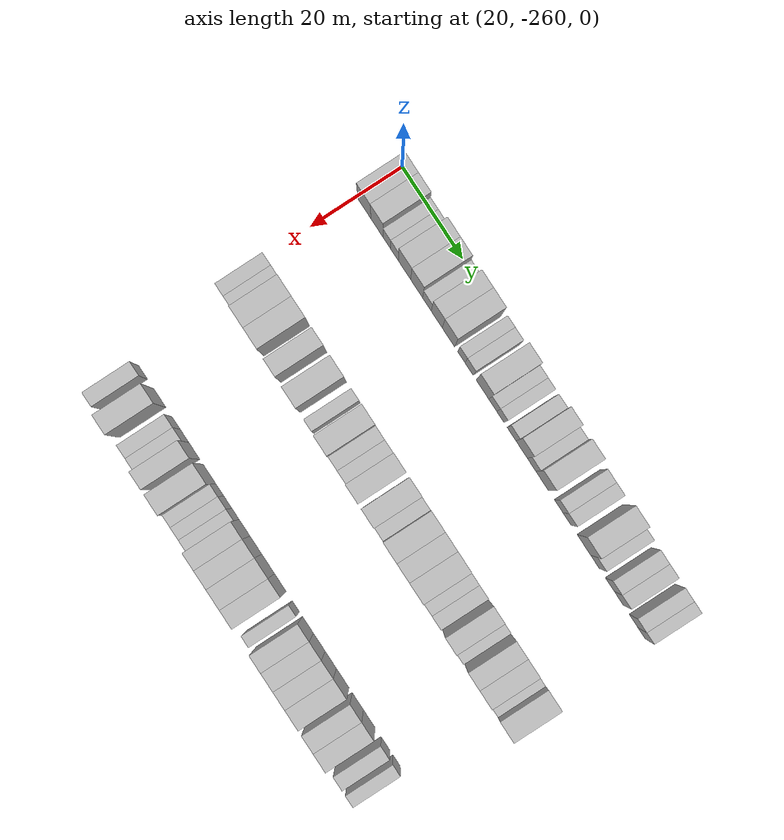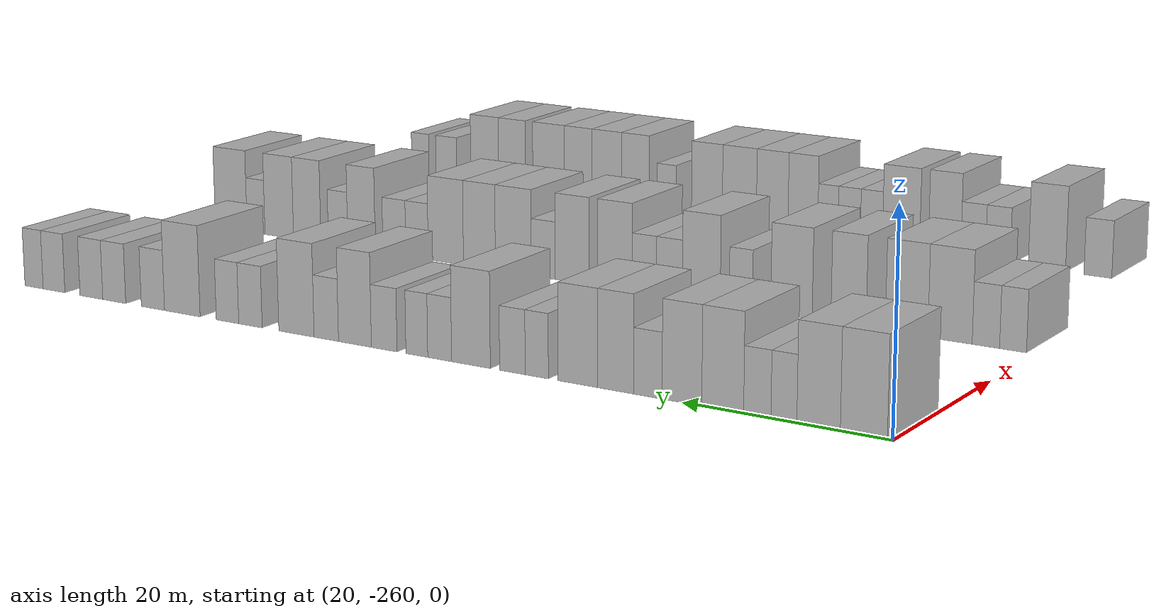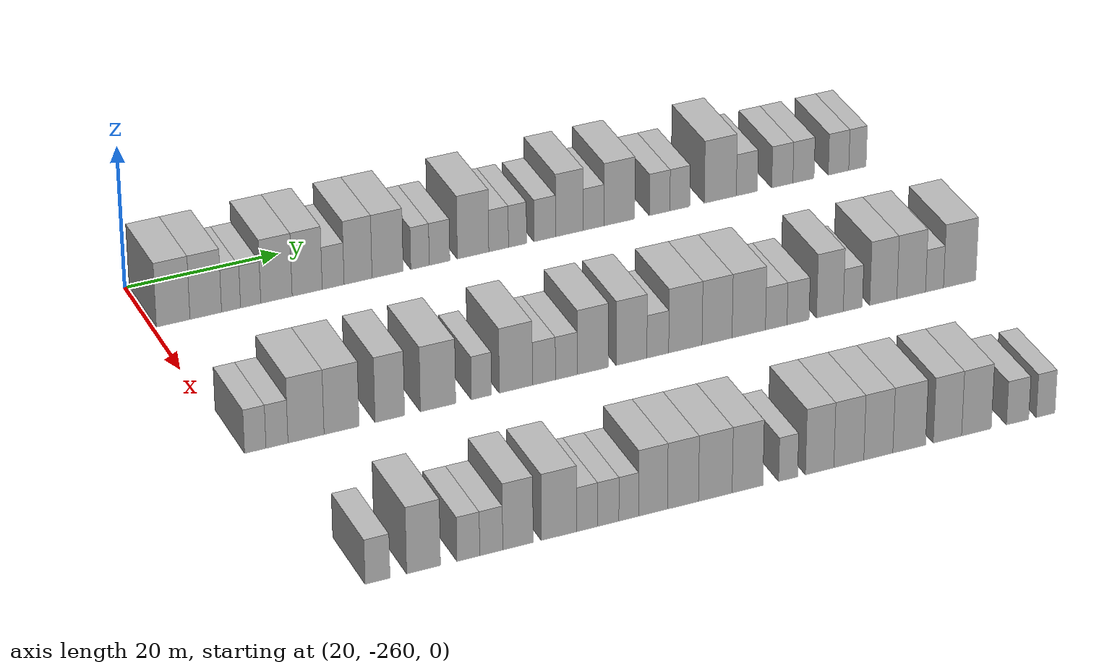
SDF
<sdf version="1.6">
 <world name="default">
  <model name="building_47">
   <static>1</static>
   <pose>25.0000 -257.3190 0 0.000000 0.000000 0.000000</pose>
   <link name="link">
    <pose>0 0 4.50 0 0 0</pose>
    <collision name="collision"><geometry><box><size>10.0000 4.3121 9.0000</size></box></geometry></collision>
    <visual name="visual">
     <cast_shadows>0</cast_shadows>
     <geometry><box><size>10.0000 4.3121 9.0000</size></box></geometry>
     <material>
      <script>
       <uri>model://HANNAS_wall/materials/scripts</uri>
       <uri>model://HANNAS_wall/materials/textures</uri>
       <name>vrc/HANNAS_wall</name>
      </script>
     </material>
    </visual>
   </link>
  </model>
  <model name="building_48">
   <static>1</static>
   <pose>25.0000 -253.1301 0 0.000000 0.000000 0.000000</pose>
   <link name="link">
    <pose>0 0 4.50 0 0 0</pose>
    <collision name="collision"><geometry><box><size>10.0000 4.0658 9.0000</size></box></geometry></collision>
    <visual name="visual">
     <cast_shadows>0</cast_shadows>
     <geometry><box><size>10.0000 4.0658 9.0000</size></box></geometry>
     <material>
      <script>
       <uri>model://HANNAS_wall/materials/scripts</uri>
       <uri>model://HANNAS_wall/materials/textures</uri>
       <name>vrc/HANNAS_wall</name>
      </script>
     </material>
    </visual>
   </link>
  </model>
  <model name="building_49">
   <static>1</static>
   <pose>25.0000 -249.8731 0 0.000000 0.000000 0.000000</pose>
   <link name="link">
    <pose>0 0 3.00 0 0 0</pose>
    <collision name="collision"><geometry><box><size>10.0000 2.4481 6.0000</size></box></geometry></collision>
    <visual name="visual">
     <cast_shadows>0</cast_shadows>
     <geometry><box><size>10.0000 2.4481 6.0000</size></box></geometry>
     <material>
      <script>
       <uri>model://HANNAS_wall/materials/scripts</uri>
       <uri>model://HANNAS_wall/materials/textures</uri>
       <name>vrc/HANNAS_wall</name>
      </script>
     </material>
    </visual>
   </link>
  </model>
  <model name="building_50">
   <static>1</static>
   <pose>25.0000 -247.3394 0 0.000000 0.000000 0.000000</pose>
   <link name="link">
    <pose>0 0 3.00 0 0 0</pose>
    <collision name="collision"><geometry><box><size>10.0000 2.6193 6.0000</size></box></geometry></collision>
    <visual name="visual">
     <cast_shadows>0</cast_shadows>
     <geometry><box><size>10.0000 2.6193 6.0000</size></box></geometry>
     <material>
      <script>
       <uri>model://HANNAS_wall/materials/scripts</uri>
       <uri>model://HANNAS_wall/materials/textures</uri>
       <name>vrc/HANNAS_wall</name>
      </script>
     </material>
    </visual>
   </link>
  </model>
  <model name="building_51">
   <static>1</static>
   <pose>25.0000 -243.9906 0 0.000000 0.000000 0.000000</pose>
   <link name="link">
    <pose>0 0 4.50 0 0 0</pose>
    <collision name="collision"><geometry><box><size>10.0000 4.0783 9.0000</size></box></geometry></collision>
    <visual name="visual">
     <cast_shadows>0</cast_shadows>
     <geometry><box><size>10.0000 4.0783 9.0000</size></box></geometry>
     <material>
      <script>
       <uri>model://HANNAS_wall/materials/scripts</uri>
       <uri>model://HANNAS_wall/materials/textures</uri>
       <name>vrc/HANNAS_wall</name>
      </script>
     </material>
    </visual>
   </link>
  </model>
  <model name="building_52">
   <static>1</static>
   <pose>25.0000 -239.9852 0 0.000000 0.000000 0.000000</pose>
   <link name="link">
    <pose>0 0 4.50 0 0 0</pose>
    <collision name="collision"><geometry><box><size>10.0000 3.9326 9.0000</size></box></geometry></collision>
    <visual name="visual">
     <cast_shadows>0</cast_shadows>
     <geometry><box><size>10.0000 3.9326 9.0000</size></box></geometry>
     <material>
      <script>
       <uri>model://HANNAS_wall/materials/scripts</uri>
       <uri>model://HANNAS_wall/materials/textures</uri>
       <name>vrc/HANNAS_wall</name>
      </script>
     </material>
    </visual>
   </link>
  </model>
  <model name="building_53">
   <static>1</static>
   <pose>25.0000 -236.5859 0 0.000000 0.000000 0.000000</pose>
   <link name="link">
    <pose>0 0 3.00 0 0 0</pose>
    <collision name="collision"><geometry><box><size>10.0000 2.8661 6.0000</size></box></geometry></collision>
    <visual name="visual">
     <cast_shadows>0</cast_shadows>
     <geometry><box><size>10.0000 2.8661 6.0000</size></box></geometry>
     <material>
      <script>
       <uri>model://HANNAS_wall/materials/scripts</uri>
       <uri>model://HANNAS_wall/materials/textures</uri>
       <name>vrc/HANNAS_wall</name>
      </script>
     </material>
    </visual>
   </link>
  </model>
  <model name="building_54">
   <static>1</static>
   <pose>25.0000 -233.3143 0 0.000000 0.000000 0.000000</pose>
   <link name="link">
    <pose>0 0 4.50 0 0 0</pose>
    <collision name="collision"><geometry><box><size>10.0000 3.6769 9.0000</size></box></geometry></collision>
    <visual name="visual">
     <cast_shadows>0</cast_shadows>
     <geometry><box><size>10.0000 3.6769 9.0000</size></box></geometry>
     <material>
      <script>
       <uri>model://HANNAS_wall/materials/scripts</uri>
       <uri>model://HANNAS_wall/materials/textures</uri>
       <name>vrc/HANNAS_wall</name>
      </script>
     </material>
    </visual>
   </link>
  </model>
  <model name="building_55">
   <static>1</static>
   <pose>25.0000 -229.4184 0 0.000000 0.000000 0.000000</pose>
   <link name="link">
    <pose>0 0 4.50 0 0 0</pose>
    <collision name="collision"><geometry><box><size>10.0000 4.1149 9.0000</size></box></geometry></collision>
    <visual name="visual">
     <cast_shadows>0</cast_shadows>
     <geometry><box><size>10.0000 4.1149 9.0000</size></box></geometry>
     <material>
      <script>
       <uri>model://HANNAS_wall/materials/scripts</uri>
       <uri>model://HANNAS_wall/materials/textures</uri>
       <name>vrc/HANNAS_wall</name>
      </script>
     </material>
    </visual>
   </link>
  </model>
  <model name="building_56">
   <static>1</static>
   <pose>25.0000 -225.1333 0 0.000000 0.000000 0.000000</pose>
   <link name="link">
    <pose>0 0 3.00 0 0 0</pose>
    <collision name="collision"><geometry><box><size>10.0000 2.4555 6.0000</size></box></geometry></collision>
    <visual name="visual">
     <cast_shadows>0</cast_shadows>
     <geometry><box><size>10.0000 2.4555 6.0000</size></box></geometry>
     <material>
      <script>
       <uri>model://HANNAS_wall/materials/scripts</uri>
       <uri>model://HANNAS_wall/materials/textures</uri>
       <name>vrc/HANNAS_wall</name>
      </script>
     </material>
    </visual>
   </link>
  </model>
  <model name="building_57">
   <static>1</static>
   <pose>25.0000 -222.5394 0 0.000000 0.000000 0.000000</pose>
   <link name="link">
    <pose>0 0 3.00 0 0 0</pose>
    <collision name="collision"><geometry><box><size>10.0000 2.7322 6.0000</size></box></geometry></collision>
    <visual name="visual">
     <cast_shadows>0</cast_shadows>
     <geometry><box><size>10.0000 2.7322 6.0000</size></box></geometry>
     <material>
      <script>
       <uri>model://HANNAS_wall/materials/scripts</uri>
       <uri>model://HANNAS_wall/materials/textures</uri>
       <name>vrc/HANNAS_wall</name>
      </script>
     </material>
    </visual>
   </link>
  </model>
  <model name="building_58">
   <static>1</static>
   <pose>25.0000 -218.0650 0 0.000000 0.000000 0.000000</pose>
   <link name="link">
    <pose>0 0 4.50 0 0 0</pose>
    <collision name="collision"><geometry><box><size>10.0000 4.2166 9.0000</size></box></geometry></collision>
    <visual name="visual">
     <cast_shadows>0</cast_shadows>
     <geometry><box><size>10.0000 4.2166 9.0000</size></box></geometry>
     <material>
      <script>
       <uri>model://HANNAS_wall/materials/scripts</uri>
       <uri>model://HANNAS_wall/materials/textures</uri>
       <name>vrc/HANNAS_wall</name>
      </script>
     </material>
    </visual>
   </link>
  </model>
  <model name="building_59">
   <static>1</static>
   <pose>25.0000 -214.6383 0 0.000000 0.000000 0.000000</pose>
   <link name="link">
    <pose>0 0 3.00 0 0 0</pose>
    <collision name="collision"><geometry><box><size>10.0000 2.6369 6.0000</size></box></geometry></collision>
    <visual name="visual">
     <cast_shadows>0</cast_shadows>
     <geometry><box><size>10.0000 2.6369 6.0000</size></box></geometry>
     <material>
      <script>
       <uri>model://HANNAS_wall/materials/scripts</uri>
       <uri>model://HANNAS_wall/materials/textures</uri>
       <name>vrc/HANNAS_wall</name>
      </script>
     </material>
    </visual>
   </link>
  </model>
  <model name="building_60">
   <static>1</static>
   <pose>25.0000 -212.1002 0 0.000000 0.000000 0.000000</pose>
   <link name="link">
    <pose>0 0 3.00 0 0 0</pose>
    <collision name="collision"><geometry><box><size>10.0000 2.4391 6.0000</size></box></geometry></collision>
    <visual name="visual">
     <cast_shadows>0</cast_shadows>
     <geometry><box><size>10.0000 2.4391 6.0000</size></box></geometry>
     <material>
      <script>
       <uri>model://HANNAS_wall/materials/scripts</uri>
       <uri>model://HANNAS_wall/materials/textures</uri>
       <name>vrc/HANNAS_wall</name>
      </script>
     </material>
    </visual>
   </link>
  </model>
  <model name="building_61">
   <static>1</static>
   <pose>25.0000 -208.4252 0 0.000000 0.000000 0.000000</pose>
   <link name="link">
    <pose>0 0 3.00 0 0 0</pose>
    <collision name="collision"><geometry><box><size>10.0000 2.9109 6.0000</size></box></geometry></collision>
    <visual name="visual">
     <cast_shadows>0</cast_shadows>
     <geometry><box><size>10.0000 2.9109 6.0000</size></box></geometry>
     <material>
      <script>
       <uri>model://HANNAS_wall/materials/scripts</uri>
       <uri>model://HANNAS_wall/materials/textures</uri>
       <name>vrc/HANNAS_wall</name>
      </script>
     </material>
    </visual>
   </link>
  </model>
  <model name="building_62">
   <static>1</static>
   <pose>25.0000 -205.0782 0 0.000000 0.000000 0.000000</pose>
   <link name="link">
    <pose>0 0 4.50 0 0 0</pose>
    <collision name="collision"><geometry><box><size>10.0000 3.7832 9.0000</size></box></geometry></collision>
    <visual name="visual">
     <cast_shadows>0</cast_shadows>
     <geometry><box><size>10.0000 3.7832 9.0000</size></box></geometry>
     <material>
      <script>
       <uri>model://HANNAS_wall/materials/scripts</uri>
       <uri>model://HANNAS_wall/materials/textures</uri>
       <name>vrc/HANNAS_wall</name>
      </script>
     </material>
    </visual>
   </link>
  </model>
  <model name="building_63">
   <static>1</static>
   <pose>25.0000 -201.7637 0 0.000000 0.000000 0.000000</pose>
   <link name="link">
    <pose>0 0 3.00 0 0 0</pose>
    <collision name="collision"><geometry><box><size>10.0000 2.8456 6.0000</size></box></geometry></collision>
    <visual name="visual">
     <cast_shadows>0</cast_shadows>
     <geometry><box><size>10.0000 2.8456 6.0000</size></box></geometry>
     <material>
      <script>
       <uri>model://HANNAS_wall/materials/scripts</uri>
       <uri>model://HANNAS_wall/materials/textures</uri>
       <name>vrc/HANNAS_wall</name>
      </script>
     </material>
    </visual>
   </link>
  </model>
  <model name="building_64">
   <static>1</static>
   <pose>25.0000 -198.2565 0 0.000000 0.000000 0.000000</pose>
   <link name="link">
    <pose>0 0 4.50 0 0 0</pose>
    <collision name="collision"><geometry><box><size>10.0000 4.1689 9.0000</size></box></geometry></collision>
    <visual name="visual">
     <cast_shadows>0</cast_shadows>
     <geometry><box><size>10.0000 4.1689 9.0000</size></box></geometry>
     <material>
      <script>
       <uri>model://HANNAS_wall/materials/scripts</uri>
       <uri>model://HANNAS_wall/materials/textures</uri>
       <name>vrc/HANNAS_wall</name>
      </script>
     </material>
    </visual>
   </link>
  </model>
  <model name="building_65">
   <static>1</static>
   <pose>25.0000 -192.7559 0 0.000000 0.000000 0.000000</pose>
   <link name="link">
    <pose>0 0 3.00 0 0 0</pose>
    <collision name="collision"><geometry><box><size>10.0000 2.8322 6.0000</size></box></geometry></collision>
    <visual name="visual">
     <cast_shadows>0</cast_shadows>
     <geometry><box><size>10.0000 2.8322 6.0000</size></box></geometry>
     <material>
      <script>
       <uri>model://HANNAS_wall/materials/scripts</uri>
       <uri>model://HANNAS_wall/materials/textures</uri>
       <name>vrc/HANNAS_wall</name>
      </script>
     </material>
    </visual>
   </link>
  </model>
  <model name="building_66">
   <static>1</static>
   <pose>25.0000 -189.9664 0 0.000000 0.000000 0.000000</pose>
   <link name="link">
    <pose>0 0 3.00 0 0 0</pose>
    <collision name="collision"><geometry><box><size>10.0000 2.7468 6.0000</size></box></geometry></collision>
    <visual name="visual">
     <cast_shadows>0</cast_shadows>
     <geometry><box><size>10.0000 2.7468 6.0000</size></box></geometry>
     <material>
      <script>
       <uri>model://HANNAS_wall/materials/scripts</uri>
       <uri>model://HANNAS_wall/materials/textures</uri>
       <name>vrc/HANNAS_wall</name>
      </script>
     </material>
    </visual>
   </link>
  </model>
  <model name="building_67">
   <static>1</static>
   <pose>25.0000 -184.3687 0 0.000000 0.000000 0.000000</pose>
   <link name="link">
    <pose>0 0 4.50 0 0 0</pose>
    <collision name="collision"><geometry><box><size>10.0000 4.4485 9.0000</size></box></geometry></collision>
    <visual name="visual">
     <cast_shadows>0</cast_shadows>
     <geometry><box><size>10.0000 4.4485 9.0000</size></box></geometry>
     <material>
      <script>
       <uri>model://HANNAS_wall/materials/scripts</uri>
       <uri>model://HANNAS_wall/materials/textures</uri>
       <name>vrc/HANNAS_wall</name>
      </script>
     </material>
    </visual>
   </link>
  </model>
  <model name="building_68">
   <static>1</static>
   <pose>25.0000 -180.6715 0 0.000000 0.000000 0.000000</pose>
   <link name="link">
    <pose>0 0 3.00 0 0 0</pose>
    <collision name="collision"><geometry><box><size>10.0000 2.9459 6.0000</size></box></geometry></collision>
    <visual name="visual">
     <cast_shadows>0</cast_shadows>
     <geometry><box><size>10.0000 2.9459 6.0000</size></box></geometry>
     <material>
      <script>
       <uri>model://HANNAS_wall/materials/scripts</uri>
       <uri>model://HANNAS_wall/materials/textures</uri>
       <name>vrc/HANNAS_wall</name>
      </script>
     </material>
    </visual>
   </link>
  </model>
  <model name="building_69">
   <static>1</static>
   <pose>25.0000 -175.7172 0 0.000000 0.000000 0.000000</pose>
   <link name="link">
    <pose>0 0 3.00 0 0 0</pose>
    <collision name="collision"><geometry><box><size>10.0000 2.9628 6.0000</size></box></geometry></collision>
    <visual name="visual">
     <cast_shadows>0</cast_shadows>
     <geometry><box><size>10.0000 2.9628 6.0000</size></box></geometry>
     <material>
      <script>
       <uri>model://HANNAS_wall/materials/scripts</uri>
       <uri>model://HANNAS_wall/materials/textures</uri>
       <name>vrc/HANNAS_wall</name>
      </script>
     </material>
    </visual>
   </link>
  </model>
  <model name="building_70">
   <static>1</static>
   <pose>25.0000 -172.7453 0 0.000000 0.000000 0.000000</pose>
   <link name="link">
    <pose>0 0 3.00 0 0 0</pose>
    <collision name="collision"><geometry><box><size>10.0000 2.9809 6.0000</size></box></geometry></collision>
    <visual name="visual">
     <cast_shadows>0</cast_shadows>
     <geometry><box><size>10.0000 2.9809 6.0000</size></box></geometry>
     <material>
      <script>
       <uri>model://HANNAS_wall/materials/scripts</uri>
       <uri>model://HANNAS_wall/materials/textures</uri>
       <name>vrc/HANNAS_wall</name>
      </script>
     </material>
    </visual>
   </link>
  </model>
  <model name="building_71">
   <static>1</static>
   <pose>25.0000 -167.8070 0 0.000000 0.000000 0.000000</pose>
   <link name="link">
    <pose>0 0 3.00 0 0 0</pose>
    <collision name="collision"><geometry><box><size>10.0000 2.8958 6.0000</size></box></geometry></collision>
    <visual name="visual">
     <cast_shadows>0</cast_shadows>
     <geometry><box><size>10.0000 2.8958 6.0000</size></box></geometry>
     <material>
      <script>
       <uri>model://HANNAS_wall/materials/scripts</uri>
       <uri>model://HANNAS_wall/materials/textures</uri>
       <name>vrc/HANNAS_wall</name>
      </script>
     </material>
    </visual>
   </link>
  </model>
  <model name="building_72">
   <static>1</static>
   <pose>25.0000 -165.1339 0 0.000000 0.000000 0.000000</pose>
   <link name="link">
    <pose>0 0 3.00 0 0 0</pose>
    <collision name="collision"><geometry><box><size>10.0000 2.4503 6.0000</size></box></geometry></collision>
    <visual name="visual">
     <cast_shadows>0</cast_shadows>
     <geometry><box><size>10.0000 2.4503 6.0000</size></box></geometry>
     <material>
      <script>
       <uri>model://HANNAS_wall/materials/scripts</uri>
       <uri>model://HANNAS_wall/materials/textures</uri>
       <name>vrc/HANNAS_wall</name>
      </script>
     </material>
    </visual>
   </link>
  </model>
  <model name="building_273">
   <static>1</static>
   <pose>55.0000 -257.8651 0 0.000000 0.000000 0.000000</pose>
   <link name="link">
    <pose>0 0 3.00 0 0 0</pose>
    <collision name="collision"><geometry><box><size>10.0000 2.6590 6.0000</size></box></geometry></collision>
    <visual name="visual">
     <cast_shadows>0</cast_shadows>
     <geometry><box><size>10.0000 2.6590 6.0000</size></box></geometry>
     <material>
      <script>
       <uri>model://HANNAS_wall/materials/scripts</uri>
       <uri>model://HANNAS_wall/materials/textures</uri>
       <name>vrc/HANNAS_wall</name>
      </script>
     </material>
    </visual>
   </link>
  </model>
  <model name="building_274">
   <static>1</static>
   <pose>55.0000 -255.1690 0 0.000000 0.000000 0.000000</pose>
   <link name="link">
    <pose>0 0 3.00 0 0 0</pose>
    <collision name="collision"><geometry><box><size>10.0000 2.7331 6.0000</size></box></geometry></collision>
    <visual name="visual">
     <cast_shadows>0</cast_shadows>
     <geometry><box><size>10.0000 2.7331 6.0000</size></box></geometry>
     <material>
      <script>
       <uri>model://HANNAS_wall/materials/scripts</uri>
       <uri>model://HANNAS_wall/materials/textures</uri>
       <name>vrc/HANNAS_wall</name>
      </script>
     </material>
    </visual>
   </link>
  </model>
  <model name="building_275">
   <static>1</static>
   <pose>55.0000 -251.5542 0 0.000000 0.000000 0.000000</pose>
   <link name="link">
    <pose>0 0 4.50 0 0 0</pose>
    <collision name="collision"><geometry><box><size>10.0000 4.4966 9.0000</size></box></geometry></collision>
    <visual name="visual">
     <cast_shadows>0</cast_shadows>
     <geometry><box><size>10.0000 4.4966 9.0000</size></box></geometry>
     <material>
      <script>
       <uri>model://HANNAS_wall/materials/scripts</uri>
       <uri>model://HANNAS_wall/materials/textures</uri>
       <name>vrc/HANNAS_wall</name>
      </script>
     </material>
    </visual>
   </link>
  </model>
  <model name="building_276">
   <static>1</static>
   <pose>55.0000 -247.1091 0 0.000000 0.000000 0.000000</pose>
   <link name="link">
    <pose>0 0 4.50 0 0 0</pose>
    <collision name="collision"><geometry><box><size>10.0000 4.3936 9.0000</size></box></geometry></collision>
    <visual name="visual">
     <cast_shadows>0</cast_shadows>
     <geometry><box><size>10.0000 4.3936 9.0000</size></box></geometry>
     <material>
      <script>
       <uri>model://HANNAS_wall/materials/scripts</uri>
       <uri>model://HANNAS_wall/materials/textures</uri>
       <name>vrc/HANNAS_wall</name>
      </script>
     </material>
    </visual>
   </link>
  </model>
  <model name="building_277">
   <static>1</static>
   <pose>55.0000 -241.0486 0 0.000000 0.000000 0.000000</pose>
   <link name="link">
    <pose>0 0 4.50 0 0 0</pose>
    <collision name="collision"><geometry><box><size>10.0000 3.7274 9.0000</size></box></geometry></collision>
    <visual name="visual">
     <cast_shadows>0</cast_shadows>
     <geometry><box><size>10.0000 3.7274 9.0000</size></box></geometry>
     <material>
      <script>
       <uri>model://HANNAS_wall/materials/scripts</uri>
       <uri>model://HANNAS_wall/materials/textures</uri>
       <name>vrc/HANNAS_wall</name>
      </script>
     </material>
    </visual>
   </link>
  </model>
  <model name="building_278">
   <static>1</static>
   <pose>55.0000 -234.9404 0 0.000000 0.000000 0.000000</pose>
   <link name="link">
    <pose>0 0 4.50 0 0 0</pose>
    <collision name="collision"><geometry><box><size>10.0000 4.4891 9.0000</size></box></geometry></collision>
    <visual name="visual">
     <cast_shadows>0</cast_shadows>
     <geometry><box><size>10.0000 4.4891 9.0000</size></box></geometry>
     <material>
      <script>
       <uri>model://HANNAS_wall/materials/scripts</uri>
       <uri>model://HANNAS_wall/materials/textures</uri>
       <name>vrc/HANNAS_wall</name>
      </script>
     </material>
    </visual>
   </link>
  </model>
  <model name="building_279">
   <static>1</static>
   <pose>55.0000 -229.4079 0 0.000000 0.000000 0.000000</pose>
   <link name="link">
    <pose>0 0 3.00 0 0 0</pose>
    <collision name="collision"><geometry><box><size>10.0000 2.5760 6.0000</size></box></geometry></collision>
    <visual name="visual">
     <cast_shadows>0</cast_shadows>
     <geometry><box><size>10.0000 2.5760 6.0000</size></box></geometry>
     <material>
      <script>
       <uri>model://HANNAS_wall/materials/scripts</uri>
       <uri>model://HANNAS_wall/materials/textures</uri>
       <name>vrc/HANNAS_wall</name>
      </script>
     </material>
    </visual>
   </link>
  </model>
  <model name="building_280">
   <static>1</static>
   <pose>55.0000 -224.9890 0 0.000000 0.000000 0.000000</pose>
   <link name="link">
    <pose>0 0 4.50 0 0 0</pose>
    <collision name="collision"><geometry><box><size>10.0000 4.2618 9.0000</size></box></geometry></collision>
    <visual name="visual">
     <cast_shadows>0</cast_shadows>
     <geometry><box><size>10.0000 4.2618 9.0000</size></box></geometry>
     <material>
      <script>
       <uri>model://HANNAS_wall/materials/scripts</uri>
       <uri>model://HANNAS_wall/materials/textures</uri>
       <name>vrc/HANNAS_wall</name>
      </script>
     </material>
    </visual>
   </link>
  </model>
  <model name="building_281">
   <static>1</static>
   <pose>55.0000 -221.3744 0 0.000000 0.000000 0.000000</pose>
   <link name="link">
    <pose>0 0 3.00 0 0 0</pose>
    <collision name="collision"><geometry><box><size>10.0000 2.9674 6.0000</size></box></geometry></collision>
    <visual name="visual">
     <cast_shadows>0</cast_shadows>
     <geometry><box><size>10.0000 2.9674 6.0000</size></box></geometry>
     <material>
      <script>
       <uri>model://HANNAS_wall/materials/scripts</uri>
       <uri>model://HANNAS_wall/materials/textures</uri>
       <name>vrc/HANNAS_wall</name>
      </script>
     </material>
    </visual>
   </link>
  </model>
  <model name="building_282">
   <static>1</static>
   <pose>55.0000 -218.4745 0 0.000000 0.000000 0.000000</pose>
   <link name="link">
    <pose>0 0 3.00 0 0 0</pose>
    <collision name="collision"><geometry><box><size>10.0000 2.8324 6.0000</size></box></geometry></collision>
    <visual name="visual">
     <cast_shadows>0</cast_shadows>
     <geometry><box><size>10.0000 2.8324 6.0000</size></box></geometry>
     <material>
      <script>
       <uri>model://HANNAS_wall/materials/scripts</uri>
       <uri>model://HANNAS_wall/materials/textures</uri>
       <name>vrc/HANNAS_wall</name>
      </script>
     </material>
    </visual>
   </link>
  </model>
  <model name="building_283">
   <static>1</static>
   <pose>55.0000 -215.0304 0 0.000000 0.000000 0.000000</pose>
   <link name="link">
    <pose>0 0 4.50 0 0 0</pose>
    <collision name="collision"><geometry><box><size>10.0000 4.0558 9.0000</size></box></geometry></collision>
    <visual name="visual">
     <cast_shadows>0</cast_shadows>
     <geometry><box><size>10.0000 4.0558 9.0000</size></box></geometry>
     <material>
      <script>
       <uri>model://HANNAS_wall/materials/scripts</uri>
       <uri>model://HANNAS_wall/materials/textures</uri>
       <name>vrc/HANNAS_wall</name>
      </script>
     </material>
    </visual>
   </link>
  </model>
  <model name="building_284">
   <static>1</static>
   <pose>55.0000 -209.9890 0 0.000000 0.000000 0.000000</pose>
   <link name="link">
    <pose>0 0 4.50 0 0 0</pose>
    <collision name="collision"><geometry><box><size>10.0000 4.0269 9.0000</size></box></geometry></collision>
    <visual name="visual">
     <cast_shadows>0</cast_shadows>
     <geometry><box><size>10.0000 4.0269 9.0000</size></box></geometry>
     <material>
      <script>
       <uri>model://HANNAS_wall/materials/scripts</uri>
       <uri>model://HANNAS_wall/materials/textures</uri>
       <name>vrc/HANNAS_wall</name>
      </script>
     </material>
    </visual>
   </link>
  </model>
  <model name="building_285">
   <static>1</static>
   <pose>55.0000 -206.5444 0 0.000000 0.000000 0.000000</pose>
   <link name="link">
    <pose>0 0 3.00 0 0 0</pose>
    <collision name="collision"><geometry><box><size>10.0000 2.8623 6.0000</size></box></geometry></collision>
    <visual name="visual">
     <cast_shadows>0</cast_shadows>
     <geometry><box><size>10.0000 2.8623 6.0000</size></box></geometry>
     <material>
      <script>
       <uri>model://HANNAS_wall/materials/scripts</uri>
       <uri>model://HANNAS_wall/materials/textures</uri>
       <name>vrc/HANNAS_wall</name>
      </script>
     </material>
    </visual>
   </link>
  </model>
  <model name="building_286">
   <static>1</static>
   <pose>55.0000 -202.9122 0 0.000000 0.000000 0.000000</pose>
   <link name="link">
    <pose>0 0 4.50 0 0 0</pose>
    <collision name="collision"><geometry><box><size>10.0000 4.4020 9.0000</size></box></geometry></collision>
    <visual name="visual">
     <cast_shadows>0</cast_shadows>
     <geometry><box><size>10.0000 4.4020 9.0000</size></box></geometry>
     <material>
      <script>
       <uri>model://HANNAS_wall/materials/scripts</uri>
       <uri>model://HANNAS_wall/materials/textures</uri>
       <name>vrc/HANNAS_wall</name>
      </script>
     </material>
    </visual>
   </link>
  </model>
  <model name="building_287">
   <static>1</static>
   <pose>55.0000 -198.7236 0 0.000000 0.000000 0.000000</pose>
   <link name="link">
    <pose>0 0 4.50 0 0 0</pose>
    <collision name="collision"><geometry><box><size>10.0000 3.9752 9.0000</size></box></geometry></collision>
    <visual name="visual">
     <cast_shadows>0</cast_shadows>
     <geometry><box><size>10.0000 3.9752 9.0000</size></box></geometry>
     <material>
      <script>
       <uri>model://HANNAS_wall/materials/scripts</uri>
       <uri>model://HANNAS_wall/materials/textures</uri>
       <name>vrc/HANNAS_wall</name>
      </script>
     </material>
    </visual>
   </link>
  </model>
  <model name="building_288">
   <static>1</static>
   <pose>55.0000 -194.5119 0 0.000000 0.000000 0.000000</pose>
   <link name="link">
    <pose>0 0 4.50 0 0 0</pose>
    <collision name="collision"><geometry><box><size>10.0000 4.4482 9.0000</size></box></geometry></collision>
    <visual name="visual">
     <cast_shadows>0</cast_shadows>
     <geometry><box><size>10.0000 4.4482 9.0000</size></box></geometry>
     <material>
      <script>
       <uri>model://HANNAS_wall/materials/scripts</uri>
       <uri>model://HANNAS_wall/materials/textures</uri>
       <name>vrc/HANNAS_wall</name>
      </script>
     </material>
    </visual>
   </link>
  </model>
  <model name="building_289">
   <static>1</static>
   <pose>55.0000 -190.8469 0 0.000000 0.000000 0.000000</pose>
   <link name="link">
    <pose>0 0 3.00 0 0 0</pose>
    <collision name="collision"><geometry><box><size>10.0000 2.8818 6.0000</size></box></geometry></collision>
    <visual name="visual">
     <cast_shadows>0</cast_shadows>
     <geometry><box><size>10.0000 2.8818 6.0000</size></box></geometry>
     <material>
      <script>
       <uri>model://HANNAS_wall/materials/scripts</uri>
       <uri>model://HANNAS_wall/materials/textures</uri>
       <name>vrc/HANNAS_wall</name>
      </script>
     </material>
    </visual>
   </link>
  </model>
  <model name="building_290">
   <static>1</static>
   <pose>55.0000 -187.9256 0 0.000000 0.000000 0.000000</pose>
   <link name="link">
    <pose>0 0 3.00 0 0 0</pose>
    <collision name="collision"><geometry><box><size>10.0000 2.9609 6.0000</size></box></geometry></collision>
    <visual name="visual">
     <cast_shadows>0</cast_shadows>
     <geometry><box><size>10.0000 2.9609 6.0000</size></box></geometry>
     <material>
      <script>
       <uri>model://HANNAS_wall/materials/scripts</uri>
       <uri>model://HANNAS_wall/materials/textures</uri>
       <name>vrc/HANNAS_wall</name>
      </script>
     </material>
    </visual>
   </link>
  </model>
  <model name="building_291">
   <static>1</static>
   <pose>55.0000 -183.6408 0 0.000000 0.000000 0.000000</pose>
   <link name="link">
    <pose>0 0 4.50 0 0 0</pose>
    <collision name="collision"><geometry><box><size>10.0000 3.6087 9.0000</size></box></geometry></collision>
    <visual name="visual">
     <cast_shadows>0</cast_shadows>
     <geometry><box><size>10.0000 3.6087 9.0000</size></box></geometry>
     <material>
      <script>
       <uri>model://HANNAS_wall/materials/scripts</uri>
       <uri>model://HANNAS_wall/materials/textures</uri>
       <name>vrc/HANNAS_wall</name>
      </script>
     </material>
    </visual>
   </link>
  </model>
  <model name="building_292">
   <static>1</static>
   <pose>55.0000 -180.5463 0 0.000000 0.000000 0.000000</pose>
   <link name="link">
    <pose>0 0 3.00 0 0 0</pose>
    <collision name="collision"><geometry><box><size>10.0000 2.5803 6.0000</size></box></geometry></collision>
    <visual name="visual">
     <cast_shadows>0</cast_shadows>
     <geometry><box><size>10.0000 2.5803 6.0000</size></box></geometry>
     <material>
      <script>
       <uri>model://HANNAS_wall/materials/scripts</uri>
       <uri>model://HANNAS_wall/materials/textures</uri>
       <name>vrc/HANNAS_wall</name>
      </script>
     </material>
    </visual>
   </link>
  </model>
  <model name="building_293">
   <static>1</static>
   <pose>55.0000 -176.4105 0 0.000000 0.000000 0.000000</pose>
   <link name="link">
    <pose>0 0 4.50 0 0 0</pose>
    <collision name="collision"><geometry><box><size>10.0000 3.6912 9.0000</size></box></geometry></collision>
    <visual name="visual">
     <cast_shadows>0</cast_shadows>
     <geometry><box><size>10.0000 3.6912 9.0000</size></box></geometry>
     <material>
      <script>
       <uri>model://HANNAS_wall/materials/scripts</uri>
       <uri>model://HANNAS_wall/materials/textures</uri>
       <name>vrc/HANNAS_wall</name>
      </script>
     </material>
    </visual>
   </link>
  </model>
  <model name="building_294">
   <static>1</static>
   <pose>55.0000 -172.6098 0 0.000000 0.000000 0.000000</pose>
   <link name="link">
    <pose>0 0 4.50 0 0 0</pose>
    <collision name="collision"><geometry><box><size>10.0000 3.9103 9.0000</size></box></geometry></collision>
    <visual name="visual">
     <cast_shadows>0</cast_shadows>
     <geometry><box><size>10.0000 3.9103 9.0000</size></box></geometry>
     <material>
      <script>
       <uri>model://HANNAS_wall/materials/scripts</uri>
       <uri>model://HANNAS_wall/materials/textures</uri>
       <name>vrc/HANNAS_wall</name>
      </script>
     </material>
    </visual>
   </link>
  </model>
  <model name="building_295">
   <static>1</static>
   <pose>55.0000 -169.4228 0 0.000000 0.000000 0.000000</pose>
   <link name="link">
    <pose>0 0 3.00 0 0 0</pose>
    <collision name="collision"><geometry><box><size>10.0000 2.4638 6.0000</size></box></geometry></collision>
    <visual name="visual">
     <cast_shadows>0</cast_shadows>
     <geometry><box><size>10.0000 2.4638 6.0000</size></box></geometry>
     <material>
      <script>
       <uri>model://HANNAS_wall/materials/scripts</uri>
       <uri>model://HANNAS_wall/materials/textures</uri>
       <name>vrc/HANNAS_wall</name>
      </script>
     </material>
    </visual>
   </link>
  </model>
  <model name="building_296">
   <static>1</static>
   <pose>55.0000 -165.9769 0 0.000000 0.000000 0.000000</pose>
   <link name="link">
    <pose>0 0 4.50 0 0 0</pose>
    <collision name="collision"><geometry><box><size>10.0000 4.4279 9.0000</size></box></geometry></collision>
    <visual name="visual">
     <cast_shadows>0</cast_shadows>
     <geometry><box><size>10.0000 4.4279 9.0000</size></box></geometry>
     <material>
      <script>
       <uri>model://HANNAS_wall/materials/scripts</uri>
       <uri>model://HANNAS_wall/materials/textures</uri>
       <name>vrc/HANNAS_wall</name>
      </script>
     </material>
    </visual>
   </link>
  </model>
  <model name="building_486">
   <static>1</static>
   <pose>85.0000 -254.4381 0 0.000000 0.000000 0.000000</pose>
   <link name="link">
    <pose>0 0 3.00 0 0 0</pose>
    <collision name="collision"><geometry><box><size>10.0000 2.9943 6.0000</size></box></geometry></collision>
    <visual name="visual">
     <cast_shadows>0</cast_shadows>
     <geometry><box><size>10.0000 2.9943 6.0000</size></box></geometry>
     <material>
      <script>
       <uri>model://HANNAS_wall/materials/scripts</uri>
       <uri>model://HANNAS_wall/materials/textures</uri>
       <name>vrc/HANNAS_wall</name>
      </script>
     </material>
    </visual>
   </link>
  </model>
  <model name="building_487">
   <static>1</static>
   <pose>85.0000 -248.8941 0 0.000000 0.000000 0.000000</pose>
   <link name="link">
    <pose>0 0 4.50 0 0 0</pose>
    <collision name="collision"><geometry><box><size>10.0000 4.0938 9.0000</size></box></geometry></collision>
    <visual name="visual">
     <cast_shadows>0</cast_shadows>
     <geometry><box><size>10.0000 4.0938 9.0000</size></box></geometry>
     <material>
      <script>
       <uri>model://HANNAS_wall/materials/scripts</uri>
       <uri>model://HANNAS_wall/materials/textures</uri>
       <name>vrc/HANNAS_wall</name>
      </script>
     </material>
    </visual>
   </link>
  </model>
  <model name="building_488">
   <static>1</static>
   <pose>85.0000 -243.4610 0 0.000000 0.000000 0.000000</pose>
   <link name="link">
    <pose>0 0 3.00 0 0 0</pose>
    <collision name="collision"><geometry><box><size>10.0000 2.7724 6.0000</size></box></geometry></collision>
    <visual name="visual">
     <cast_shadows>0</cast_shadows>
     <geometry><box><size>10.0000 2.7724 6.0000</size></box></geometry>
     <material>
      <script>
       <uri>model://HANNAS_wall/materials/scripts</uri>
       <uri>model://HANNAS_wall/materials/textures</uri>
       <name>vrc/HANNAS_wall</name>
      </script>
     </material>
    </visual>
   </link>
  </model>
  <model name="building_489">
   <static>1</static>
   <pose>85.0000 -240.6681 0 0.000000 0.000000 0.000000</pose>
   <link name="link">
    <pose>0 0 3.00 0 0 0</pose>
    <collision name="collision"><geometry><box><size>10.0000 2.8135 6.0000</size></box></geometry></collision>
    <visual name="visual">
     <cast_shadows>0</cast_shadows>
     <geometry><box><size>10.0000 2.8135 6.0000</size></box></geometry>
     <material>
      <script>
       <uri>model://HANNAS_wall/materials/scripts</uri>
       <uri>model://HANNAS_wall/materials/textures</uri>
       <name>vrc/HANNAS_wall</name>
      </script>
     </material>
    </visual>
   </link>
  </model>
  <model name="building_490">
   <static>1</static>
   <pose>85.0000 -237.4027 0 0.000000 0.000000 0.000000</pose>
   <link name="link">
    <pose>0 0 4.50 0 0 0</pose>
    <collision name="collision"><geometry><box><size>10.0000 3.7172 9.0000</size></box></geometry></collision>
    <visual name="visual">
     <cast_shadows>0</cast_shadows>
     <geometry><box><size>10.0000 3.7172 9.0000</size></box></geometry>
     <material>
      <script>
       <uri>model://HANNAS_wall/materials/scripts</uri>
       <uri>model://HANNAS_wall/materials/textures</uri>
       <name>vrc/HANNAS_wall</name>
      </script>
     </material>
    </visual>
   </link>
  </model>
  <model name="building_491">
   <static>1</static>
   <pose>85.0000 -232.3713 0 0.000000 0.000000 0.000000</pose>
   <link name="link">
    <pose>0 0 4.50 0 0 0</pose>
    <collision name="collision"><geometry><box><size>10.0000 4.3456 9.0000</size></box></geometry></collision>
    <visual name="visual">
     <cast_shadows>0</cast_shadows>
     <geometry><box><size>10.0000 4.3456 9.0000</size></box></geometry>
     <material>
      <script>
       <uri>model://HANNAS_wall/materials/scripts</uri>
       <uri>model://HANNAS_wall/materials/textures</uri>
       <name>vrc/HANNAS_wall</name>
      </script>
     </material>
    </visual>
   </link>
  </model>
  <model name="building_492">
   <static>1</static>
   <pose>85.0000 -228.8933 0 0.000000 0.000000 0.000000</pose>
   <link name="link">
    <pose>0 0 3.00 0 0 0</pose>
    <collision name="collision"><geometry><box><size>10.0000 2.6106 6.0000</size></box></geometry></collision>
    <visual name="visual">
     <cast_shadows>0</cast_shadows>
     <geometry><box><size>10.0000 2.6106 6.0000</size></box></geometry>
     <material>
      <script>
       <uri>model://HANNAS_wall/materials/scripts</uri>
       <uri>model://HANNAS_wall/materials/textures</uri>
       <name>vrc/HANNAS_wall</name>
      </script>
     </material>
    </visual>
   </link>
  </model>
  <model name="building_493">
   <static>1</static>
   <pose>85.0000 -226.2633 0 0.000000 0.000000 0.000000</pose>
   <link name="link">
    <pose>0 0 3.00 0 0 0</pose>
    <collision name="collision"><geometry><box><size>10.0000 2.6492 6.0000</size></box></geometry></collision>
    <visual name="visual">
     <cast_shadows>0</cast_shadows>
     <geometry><box><size>10.0000 2.6492 6.0000</size></box></geometry>
     <material>
      <script>
       <uri>model://HANNAS_wall/materials/scripts</uri>
       <uri>model://HANNAS_wall/materials/textures</uri>
       <name>vrc/HANNAS_wall</name>
      </script>
     </material>
    </visual>
   </link>
  </model>
  <model name="building_494">
   <static>1</static>
   <pose>85.0000 -223.7178 0 0.000000 0.000000 0.000000</pose>
   <link name="link">
    <pose>0 0 3.00 0 0 0</pose>
    <collision name="collision"><geometry><box><size>10.0000 2.4419 6.0000</size></box></geometry></collision>
    <visual name="visual">
     <cast_shadows>0</cast_shadows>
     <geometry><box><size>10.0000 2.4419 6.0000</size></box></geometry>
     <material>
      <script>
       <uri>model://HANNAS_wall/materials/scripts</uri>
       <uri>model://HANNAS_wall/materials/textures</uri>
       <name>vrc/HANNAS_wall</name>
      </script>
     </material>
    </visual>
   </link>
  </model>
  <model name="building_495">
   <static>1</static>
   <pose>85.0000 -220.6862 0 0.000000 0.000000 0.000000</pose>
   <link name="link">
    <pose>0 0 4.50 0 0 0</pose>
    <collision name="collision"><geometry><box><size>10.0000 3.6212 9.0000</size></box></geometry></collision>
    <visual name="visual">
     <cast_shadows>0</cast_shadows>
     <geometry><box><size>10.0000 3.6212 9.0000</size></box></geometry>
     <material>
      <script>
       <uri>model://HANNAS_wall/materials/scripts</uri>
       <uri>model://HANNAS_wall/materials/textures</uri>
       <name>vrc/HANNAS_wall</name>
      </script>
     </material>
    </visual>
   </link>
  </model>
  <model name="building_496">
   <static>1</static>
   <pose>85.0000 -216.9259 0 0.000000 0.000000 0.000000</pose>
   <link name="link">
    <pose>0 0 4.50 0 0 0</pose>
    <collision name="collision"><geometry><box><size>10.0000 3.8993 9.0000</size></box></geometry></collision>
    <visual name="visual">
     <cast_shadows>0</cast_shadows>
     <geometry><box><size>10.0000 3.8993 9.0000</size></box></geometry>
     <material>
      <script>
       <uri>model://HANNAS_wall/materials/scripts</uri>
       <uri>model://HANNAS_wall/materials/textures</uri>
       <name>vrc/HANNAS_wall</name>
      </script>
     </material>
    </visual>
   </link>
  </model>
  <model name="building_497">
   <static>1</static>
   <pose>85.0000 -212.8520 0 0.000000 0.000000 0.000000</pose>
   <link name="link">
    <pose>0 0 4.50 0 0 0</pose>
    <collision name="collision"><geometry><box><size>10.0000 4.2485 9.0000</size></box></geometry></collision>
    <visual name="visual">
     <cast_shadows>0</cast_shadows>
     <geometry><box><size>10.0000 4.2485 9.0000</size></box></geometry>
     <material>
      <script>
       <uri>model://HANNAS_wall/materials/scripts</uri>
       <uri>model://HANNAS_wall/materials/textures</uri>
       <name>vrc/HANNAS_wall</name>
      </script>
     </material>
    </visual>
   </link>
  </model>
  <model name="building_498">
   <static>1</static>
   <pose>85.0000 -208.7782 0 0.000000 0.000000 0.000000</pose>
   <link name="link">
    <pose>0 0 4.50 0 0 0</pose>
    <collision name="collision"><geometry><box><size>10.0000 3.8992 9.0000</size></box></geometry></collision>
    <visual name="visual">
     <cast_shadows>0</cast_shadows>
     <geometry><box><size>10.0000 3.8992 9.0000</size></box></geometry>
     <material>
      <script>
       <uri>model://HANNAS_wall/materials/scripts</uri>
       <uri>model://HANNAS_wall/materials/textures</uri>
       <name>vrc/HANNAS_wall</name>
      </script>
     </material>
    </visual>
   </link>
  </model>
  <model name="building_499">
   <static>1</static>
   <pose>85.0000 -203.6149 0 0.000000 0.000000 0.000000</pose>
   <link name="link">
    <pose>0 0 3.00 0 0 0</pose>
    <collision name="collision"><geometry><box><size>10.0000 2.4273 6.0000</size></box></geometry></collision>
    <visual name="visual">
     <cast_shadows>0</cast_shadows>
     <geometry><box><size>10.0000 2.4273 6.0000</size></box></geometry>
     <material>
      <script>
       <uri>model://HANNAS_wall/materials/scripts</uri>
       <uri>model://HANNAS_wall/materials/textures</uri>
       <name>vrc/HANNAS_wall</name>
      </script>
     </material>
    </visual>
   </link>
  </model>
  <model name="building_500">
   <static>1</static>
   <pose>85.0000 -199.5748 0 0.000000 0.000000 0.000000</pose>
   <link name="link">
    <pose>0 0 4.50 0 0 0</pose>
    <collision name="collision"><geometry><box><size>10.0000 3.6529 9.0000</size></box></geometry></collision>
    <visual name="visual">
     <cast_shadows>0</cast_shadows>
     <geometry><box><size>10.0000 3.6529 9.0000</size></box></geometry>
     <material>
      <script>
       <uri>model://HANNAS_wall/materials/scripts</uri>
       <uri>model://HANNAS_wall/materials/textures</uri>
       <name>vrc/HANNAS_wall</name>
      </script>
     </material>
    </visual>
   </link>
  </model>
  <model name="building_501">
   <static>1</static>
   <pose>85.0000 -195.8189 0 0.000000 0.000000 0.000000</pose>
   <link name="link">
    <pose>0 0 4.50 0 0 0</pose>
    <collision name="collision"><geometry><box><size>10.0000 3.8589 9.0000</size></box></geometry></collision>
    <visual name="visual">
     <cast_shadows>0</cast_shadows>
     <geometry><box><size>10.0000 3.8589 9.0000</size></box></geometry>
     <material>
      <script>
       <uri>model://HANNAS_wall/materials/scripts</uri>
       <uri>model://HANNAS_wall/materials/textures</uri>
       <name>vrc/HANNAS_wall</name>
      </script>
     </material>
    </visual>
   </link>
  </model>
  <model name="building_502">
   <static>1</static>
   <pose>85.0000 -192.0111 0 0.000000 0.000000 0.000000</pose>
   <link name="link">
    <pose>0 0 4.50 0 0 0</pose>
    <collision name="collision"><geometry><box><size>10.0000 3.7566 9.0000</size></box></geometry></collision>
    <visual name="visual">
     <cast_shadows>0</cast_shadows>
     <geometry><box><size>10.0000 3.7566 9.0000</size></box></geometry>
     <material>
      <script>
       <uri>model://HANNAS_wall/materials/scripts</uri>
       <uri>model://HANNAS_wall/materials/textures</uri>
       <name>vrc/HANNAS_wall</name>
      </script>
     </material>
    </visual>
   </link>
  </model>
  <model name="building_503">
   <static>1</static>
   <pose>85.0000 -188.0055 0 0.000000 0.000000 0.000000</pose>
   <link name="link">
    <pose>0 0 4.50 0 0 0</pose>
    <collision name="collision"><geometry><box><size>10.0000 4.2546 9.0000</size></box></geometry></collision>
    <visual name="visual">
     <cast_shadows>0</cast_shadows>
     <geometry><box><size>10.0000 4.2546 9.0000</size></box></geometry>
     <material>
      <script>
       <uri>model://HANNAS_wall/materials/scripts</uri>
       <uri>model://HANNAS_wall/materials/textures</uri>
       <name>vrc/HANNAS_wall</name>
      </script>
     </material>
    </visual>
   </link>
  </model>
  <model name="building_504">
   <static>1</static>
   <pose>85.0000 -183.0224 0 0.000000 0.000000 0.000000</pose>
   <link name="link">
    <pose>0 0 4.50 0 0 0</pose>
    <collision name="collision"><geometry><box><size>10.0000 3.7116 9.0000</size></box></geometry></collision>
    <visual name="visual">
     <cast_shadows>0</cast_shadows>
     <geometry><box><size>10.0000 3.7116 9.0000</size></box></geometry>
     <material>
      <script>
       <uri>model://HANNAS_wall/materials/scripts</uri>
       <uri>model://HANNAS_wall/materials/textures</uri>
       <name>vrc/HANNAS_wall</name>
      </script>
     </material>
    </visual>
   </link>
  </model>
  <model name="building_505">
   <static>1</static>
   <pose>85.0000 -179.2180 0 0.000000 0.000000 0.000000</pose>
   <link name="link">
    <pose>0 0 4.50 0 0 0</pose>
    <collision name="collision"><geometry><box><size>10.0000 3.8972 9.0000</size></box></geometry></collision>
    <visual name="visual">
     <cast_shadows>0</cast_shadows>
     <geometry><box><size>10.0000 3.8972 9.0000</size></box></geometry>
     <material>
      <script>
       <uri>model://HANNAS_wall/materials/scripts</uri>
       <uri>model://HANNAS_wall/materials/textures</uri>
       <name>vrc/HANNAS_wall</name>
      </script>
     </material>
    </visual>
   </link>
  </model>
  <model name="building_506">
   <static>1</static>
   <pose>85.0000 -173.7986 0 0.000000 0.000000 0.000000</pose>
   <link name="link">
    <pose>0 0 3.00 0 0 0</pose>
    <collision name="collision"><geometry><box><size>10.0000 2.9416 6.0000</size></box></geometry></collision>
    <visual name="visual">
     <cast_shadows>0</cast_shadows>
     <geometry><box><size>10.0000 2.9416 6.0000</size></box></geometry>
     <material>
      <script>
       <uri>model://HANNAS_wall/materials/scripts</uri>
       <uri>model://HANNAS_wall/materials/textures</uri>
       <name>vrc/HANNAS_wall</name>
      </script>
     </material>
    </visual>
   </link>
  </model>
  <model name="building_507">
   <static>1</static>
   <pose>85.0000 -170.0925 0 0.000000 0.000000 0.000000</pose>
   <link name="link">
    <pose>0 0 3.00 0 0 0</pose>
    <collision name="collision"><geometry><box><size>10.0000 2.4706 6.0000</size></box></geometry></collision>
    <visual name="visual">
     <cast_shadows>0</cast_shadows>
     <geometry><box><size>10.0000 2.4706 6.0000</size></box></geometry>
     <material>
      <script>
       <uri>model://HANNAS_wall/materials/scripts</uri>
       <uri>model://HANNAS_wall/materials/textures</uri>
       <name>vrc/HANNAS_wall</name>
      </script>
     </material>
    </visual>
   </link>
  </model>
 </world>
</sdf>
